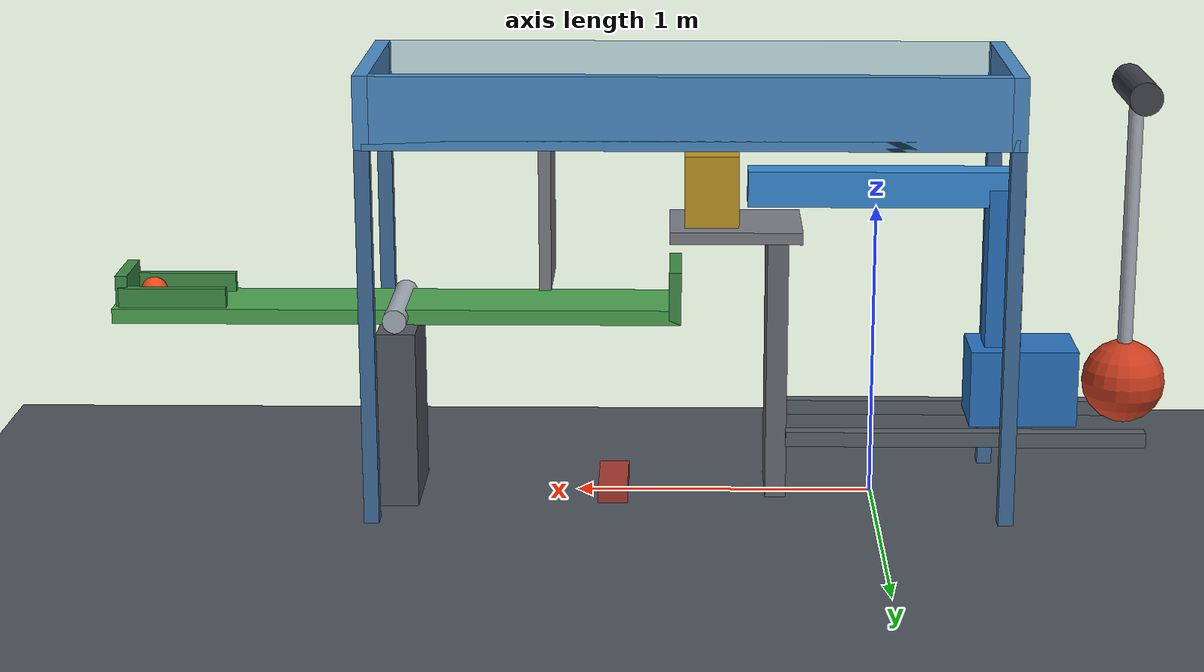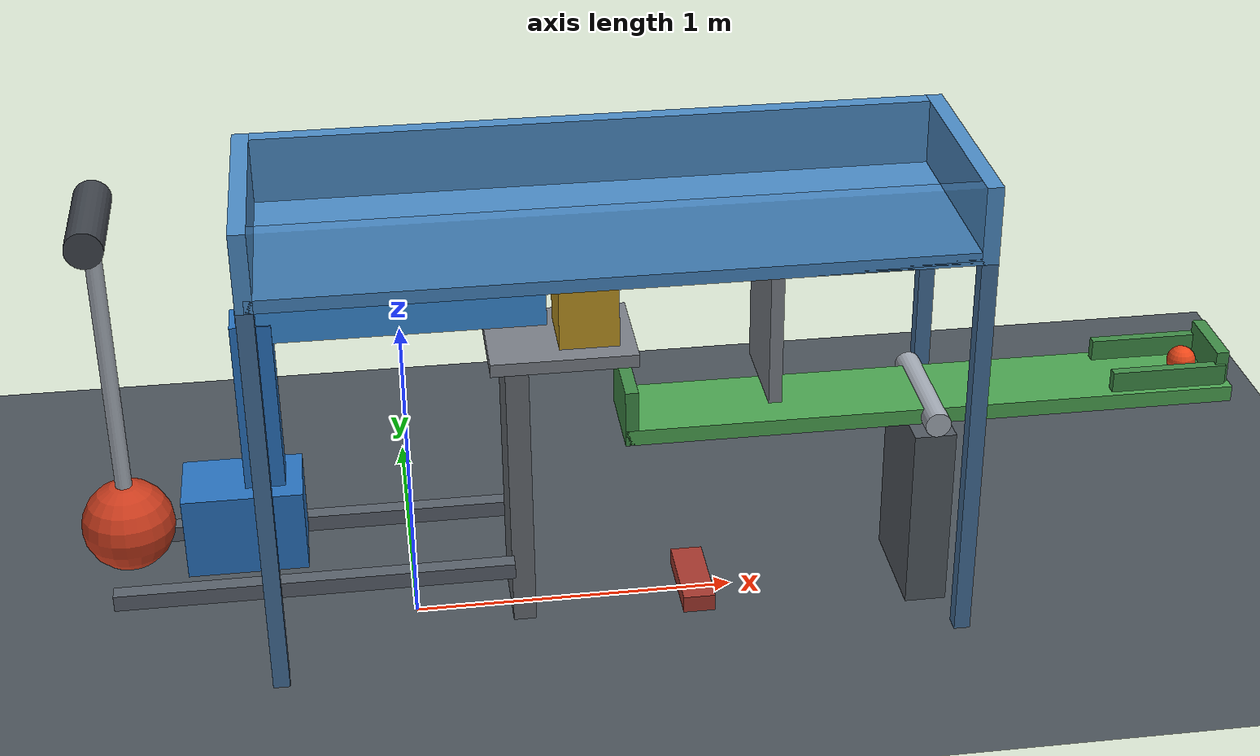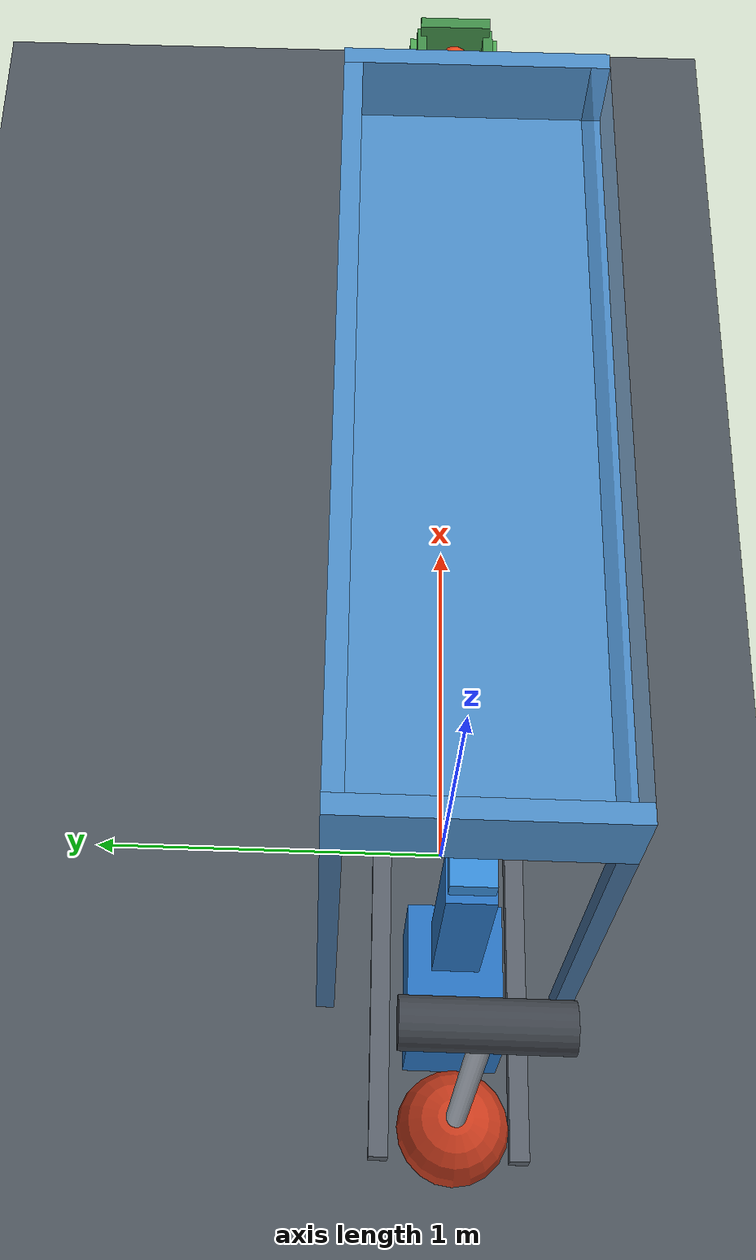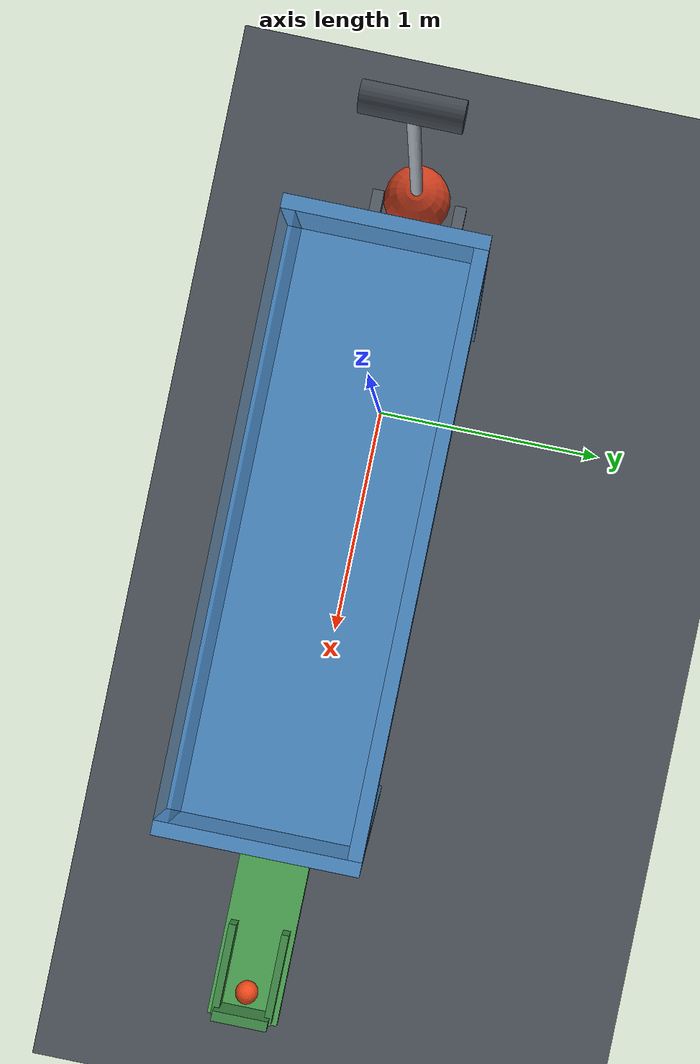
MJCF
<mujoco model="pendulum_cart_seesaw_catch">
  <compiler angle="radian" inertiafromgeom="true"/>
  <option timestep="0.002" gravity="0 0 -9.81" integrator="implicitfast" solver="Newton" iterations="100" tolerance="1e-10" cone="elliptic"/>
  <size njmax="1000" nconmax="200"/>

  <visual>
    <global azimuth="135" elevation="-20"/>
    <headlight ambient="0.35 0.35 0.35" diffuse="0.7 0.7 0.7" specular="0.2 0.2 0.2"/>
  </visual>

  <worldbody>
    <light name="overhead" pos="0 -3 6" dir="0 0.4 -1"/>
    <camera name="overview" pos="4 -7 4" xyaxes="0.88 0.47 0 -0.20 0.37 0.91"/>
    <geom name="floor" type="plane" pos="0 0 0" size="6 4 0.1" friction="0.9 0.01 0.005" rgba="0.30 0.33 0.36 1"/>

    <!-- The bob's center drops exactly 0.6 m: 1 - cos(start angle) = 0.6. -->
    <body name="pendulum" pos="-0.85 0 1.4">
      <joint name="pendulum_hinge" type="hinge" axis="0 1 0" damping="0.005" frictionloss="0.003"/>
      <geom name="pendulum_rod" type="capsule" fromto="0 0 0 0 0 -1" size="0.025" mass="0.06" friction="0.25 0.005 0.001" rgba="0.65 0.68 0.72 1"/>
      <geom name="pendulum_striker" type="sphere" pos="0 0 -1" size="0.14" mass="5" friction="0.25 0.005 0.001" solref="0.006 1" solimp="0.95 0.99 0.001" rgba="0.80 0.24 0.12 1"/>
    </body>

    <body name="pendulum_mount" pos="-0.85 0 1.4">
      <geom name="pendulum_mount_axle" type="cylinder" quat="0.70710678 0.70710678 0 0" size="0.055 0.18" contype="0" conaffinity="0" rgba="0.25 0.27 0.30 1"/>
    </body>

    <!-- The elevated pusher transfers the low bob impact to the shelf weight. -->
    <body name="cart" pos="-0.5 0 0.4">
      <joint name="cart_slide" type="slide" axis="1 0 0" limited="true" range="0 0.42" damping="0.08" frictionloss="0.02" solreflimit="0.004 1" solimplimit="0.99 0.999 0.001"/>
      <geom name="cart_chassis" type="box" size="0.18 0.12 0.13" mass="0.9" friction="0.2 0.005 0.001" solref="0.006 1" rgba="0.16 0.45 0.75 1"/>
      <geom name="cart_post" type="box" pos="0.07 0 0.30" size="0.06 0.06 0.37" mass="0.12" friction="0.2 0.005 0.001" rgba="0.16 0.45 0.75 1"/>
      <geom name="cart_pusher" type="box" pos="0.48 0 0.67" size="0.45 0.055 0.06" mass="0.12" friction="0.2 0.005 0.001" solref="0.006 1" rgba="0.22 0.55 0.85 1"/>
    </body>

    <body name="cart_guide" pos="-0.3 0 0.25">
      <geom name="cart_guide_left" type="box" pos="0 0.18 0" size="0.6 0.025 0.025" contype="0" conaffinity="0" rgba="0.35 0.38 0.42 1"/>
      <geom name="cart_guide_right" type="box" pos="0 -0.18 0" size="0.6 0.025 0.025" contype="0" conaffinity="0" rgba="0.35 0.38 0.42 1"/>
    </body>

    <body name="weight_shelf" pos="0.47 0 0.93">
      <geom name="weight_shelf_top" type="box" size="0.22 0.17 0.02" priority="1" friction="0.04 0.002 0.001" solref="0.008 1" rgba="0.48 0.50 0.53 1"/>
      <geom name="weight_shelf_leg" type="box" pos="-0.14 0 -0.455" size="0.035 0.13 0.455" rgba="0.40 0.42 0.45 1"/>
    </body>

    <body name="weight" pos="0.55 0 1.07">
      <freejoint name="weight_free"/>
      <geom name="weight_block" type="box" size="0.09 0.105 0.12" mass="2.5" friction="0.65 0.01 0.002" solref="0.008 1" solimp="0.95 0.99 0.001" rgba="0.75 0.59 0.13 1"/>
    </body>

    <!-- This backboard removes horizontal momentum without supporting the weight. -->
    <body name="weight_backboard" pos="1.10 0 0.995">
      <geom name="weight_backboard_face" type="box" size="0.02 0.16 0.245" priority="1" friction="0.02 0.002 0.001" solref="0.008 1" rgba="0.48 0.50 0.53 1"/>
    </body>

    <body name="seesaw" pos="1.6 0 0.65">
      <joint name="seesaw_hinge" type="hinge" axis="0 1 0" limited="true" range="-0.65 0.02" damping="0.015" frictionloss="0.005" solreflimit="0.004 1" solimplimit="0.99 0.999 0.001"/>
      <geom name="seesaw_deck" type="box" size="0.95 0.14 0.025" mass="0.18" friction="1 0.005 0.002" solref="0.006 1" rgba="0.30 0.65 0.32 1"/>
      <geom name="seesaw_weight_lip" type="box" pos="-0.93 0 0.065" size="0.02 0.14 0.09" mass="0.02" friction="0.8 0.005 0.002" rgba="0.25 0.55 0.28 1"/>
      <geom name="seesaw_ball_lip" type="box" pos="0.92 0 0.065" size="0.02 0.11 0.065" mass="0.015" friction="0.6 0.005 0.002" rgba="0.25 0.55 0.28 1"/>
      <geom name="seesaw_side_left" type="box" pos="0.75 0.105 0.045" size="0.18 0.015 0.045" mass="0.015" friction="0.6 0.005 0.002" rgba="0.25 0.55 0.28 1"/>
      <geom name="seesaw_side_right" type="box" pos="0.75 -0.105 0.045" size="0.18 0.015 0.045" mass="0.015" friction="0.6 0.005 0.002" rgba="0.25 0.55 0.28 1"/>
    </body>

    <body name="fulcrum" pos="1.6 0 0.3">
      <geom name="fulcrum_pedestal" type="box" size="0.065 0.18 0.3" contype="0" conaffinity="0" rgba="0.32 0.35 0.38 1"/>
      <geom name="fulcrum_axle" type="cylinder" pos="0 0 0.35" quat="0.70710678 0.70710678 0 0" size="0.04 0.20" contype="0" conaffinity="0" rgba="0.65 0.68 0.72 1"/>
    </body>

    <body name="lower_stop" pos="0.88 0 0.0275">
      <geom name="lower_stop_block" type="box" size="0.05 0.14 0.0275" friction="0.8 0.005 0.002" solref="0.004 1" solimp="0.99 0.999 0.001" rgba="0.65 0.22 0.18 1"/>
    </body>

    <body name="ball" pos="2.431234 0 0.703386">
      <freejoint name="ball_free"/>
      <geom name="ball_sphere" type="sphere" size="0.045" mass="0.055" condim="6" friction="0.8 0.01 0.005" solref="0.008 1" solimp="0.95 0.99 0.001" rgba="0.93 0.28 0.10 1"/>
    </body>

    <!-- A broad, elevated cup receives the leftward/upward launch. -->
    <body name="cup" pos="0.625 0 0">
      <geom name="cup_bottom" type="box" pos="0 0 1.28" size="1.05 0.35 0.02" priority="2" condim="6" friction="1 0.02 0.02" solref="0.015 1" rgba="0.30 0.55 0.78 1"/>
      <geom name="cup_left_wall" type="box" pos="-1.05 0 1.38" size="0.025 0.35 0.12" priority="2" condim="6" friction="1 0.02 0.02" solref="0.015 1" rgba="0.30 0.55 0.78 1"/>
      <geom name="cup_right_wall" type="box" pos="1.05 0 1.38" size="0.025 0.35 0.12" priority="2" condim="6" friction="1 0.02 0.02" solref="0.015 1" rgba="0.30 0.55 0.78 1"/>
      <geom name="cup_back_wall" type="box" pos="0 0.325 1.38" size="1.025 0.025 0.12" priority="2" condim="6" friction="1 0.02 0.02" solref="0.015 1" rgba="0.30 0.55 0.78 1"/>
      <geom name="cup_front_wall" type="box" pos="0 -0.325 1.38" size="1.025 0.025 0.12" priority="2" condim="6" friction="1 0.02 0.02" solref="0.015 1" rgba="0.30 0.55 0.78 0.35"/>
      <geom name="cup_leg_left_back" type="box" pos="-1.05 0.325 0.63" size="0.025 0.025 0.63" rgba="0.26 0.43 0.60 1"/>
      <geom name="cup_leg_left_front" type="box" pos="-1.05 -0.325 0.63" size="0.025 0.025 0.63" rgba="0.26 0.43 0.60 1"/>
      <geom name="cup_leg_right_back" type="box" pos="1.05 0.325 0.63" size="0.025 0.025 0.63" rgba="0.26 0.43 0.60 1"/>
      <geom name="cup_leg_right_front" type="box" pos="1.05 -0.325 0.63" size="0.025 0.025 0.63" rgba="0.26 0.43 0.60 1"/>
    </body>
  </worldbody>

  <keyframe>
    <key name="start" qpos="1.1592794807274085 0 0.55 0 1.07 1 0 0 0 0.02 2.431234 0 0.703386 1 0 0 0"/>
  </keyframe>
</mujoco>
